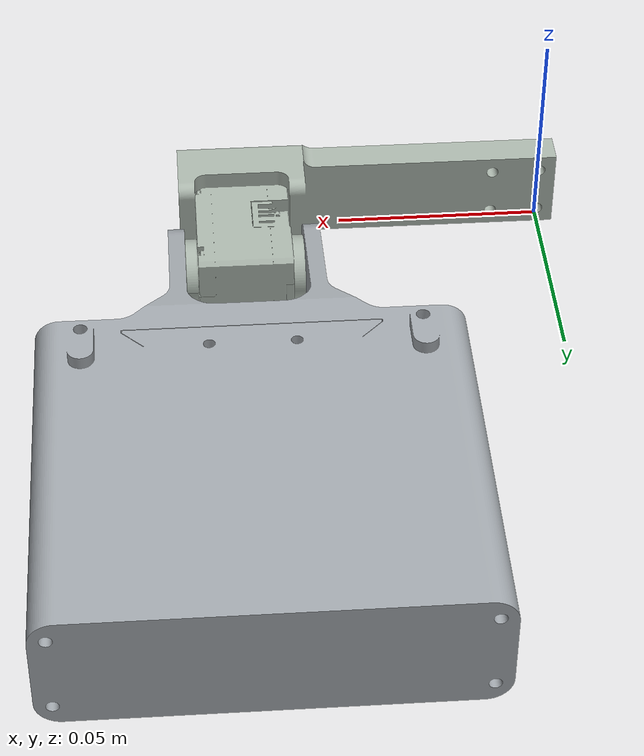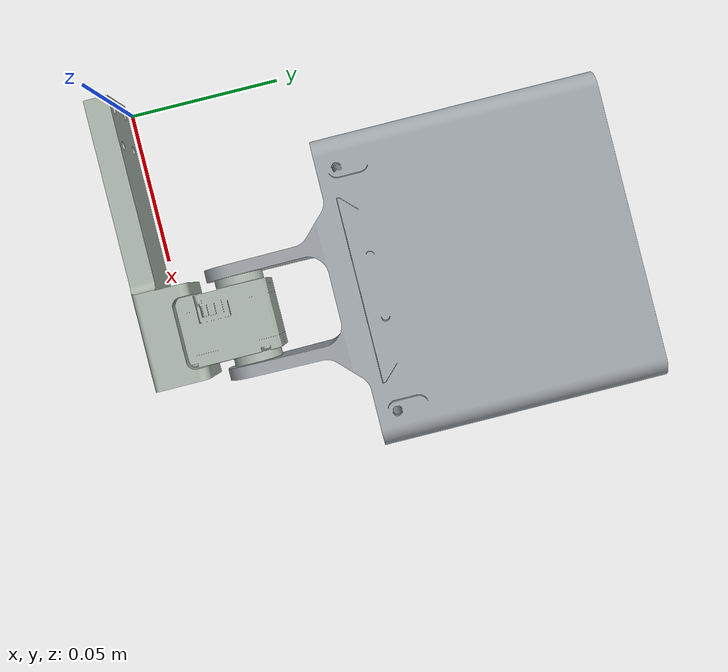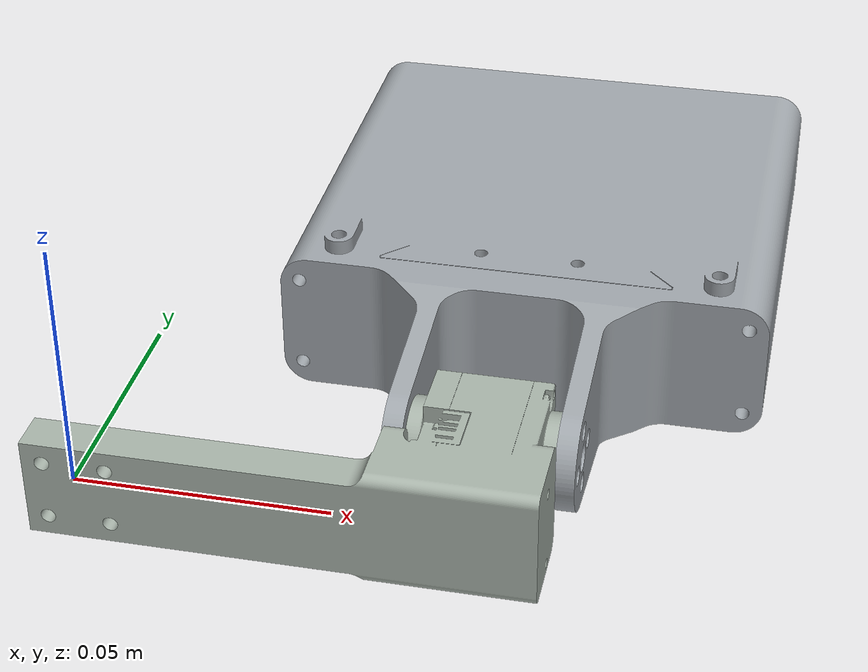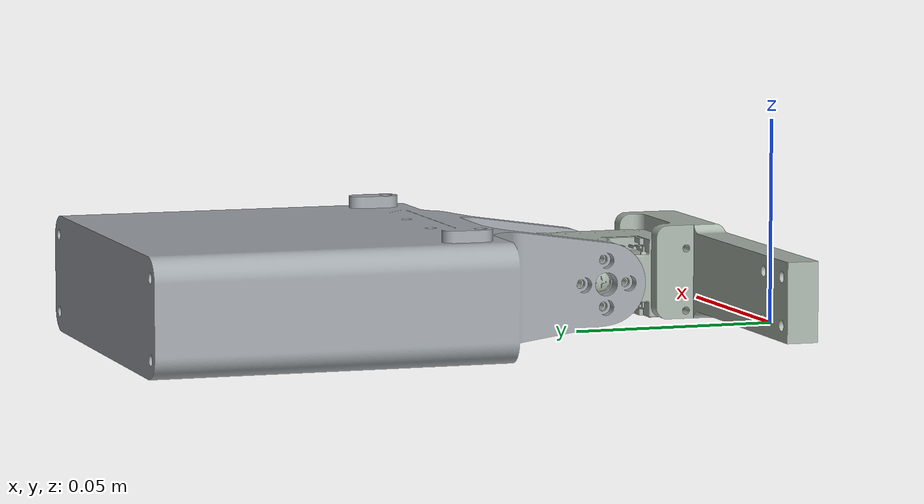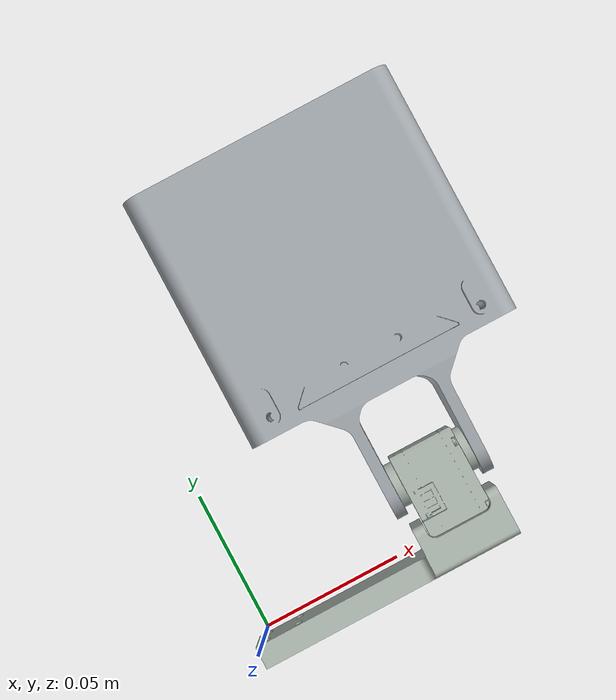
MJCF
<?xml version="1.0" ?>
<mujoco model="sysID_XC330_vis_scene">
  <include file="sysID_XC330_vis.xml"/>
  <statistic center="0 0 -0.05" extent="0.6"/>
  <visual>
    <headlight diffuse="0.6 0.6 0.6" ambient="0.3 0.3 0.3" specular="0 0 0"/>
    <rgba haze="0.15 0.25 0.35 1"/>
    <global azimuth="160" elevation="-20" offwidth="1280" offheight="720"/>
  </visual>
  <worldbody>
    <light pos="0 0 1.5" dir="0 0 -1" directional="true"/>
    <camera name="perspective" pos="0.7 -0.7 0.35" xyaxes="1 1 0 -1 1 3" mode="trackcom"/>
    <camera name="side" pos="0 -1 0.25" xyaxes="1 0 0 0 1 3" mode="trackcom"/>
    <camera name="top" pos="0 0 0.65" xyaxes="0 1 0 -1 0 0" mode="trackcom"/>
    <camera name="front" pos="1 0 0.25" xyaxes="0 1 0 -1 0 3" mode="trackcom"/>
  </worldbody>
</mujoco>

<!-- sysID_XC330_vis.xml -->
<mujoco model="sysID_XC330">
  <compiler angle="radian" autolimits="true"/>
  <asset>
    <mesh name="xc330_visual" file="../assemblies/sysID_XC330/meshes/xc330_visual.stl"/>
    <mesh name="arm_330_visual" file="../assemblies/sysID_XC330/meshes/arm_330_visual.stl"/>
  </asset>
  <worldbody>
    <geom type="mesh" rgba="0.662917 0.7055 0.667299 1" mesh="xc330_visual" class="visual"/>
    <body name="arm_330" pos="0.0894 0.0219499 0.0034194" quat="0.5 0.5 0.5 0.5">
      <inertial pos="0.0777716 1.36379e-05 -0.0145" quat="0.707306 0 0 0.706908" mass="0.2555" diaginertia="0.000410316 0.000243223 0.000221442"/>
      <joint name="joint_0" pos="0 0 0" axis="0 0 1" range="-1.5708 1.5708" damping="0.134" armature="0.0035" frictionloss="0.014"/>
      <geom type="mesh" rgba="0.630593 0.65299 0.674189 1" mesh="arm_330_visual" class="visual"/>
    </body>
  </worldbody>
  <option>
    <flag eulerdamp="disable"/>
  </option>
  <equality/>
  <contact/>
  <actuator>
    <position name="joint_0" joint="joint_0" kp="11.71875" ctrlrange="-1.5708 1.5708" class="XC330"/>
  </actuator>
  <default>
    <default class="visual">
      <geom type="mesh" contype="0" conaffinity="0" group="2"/>
    </default>
    <default class="collision">
      <geom group="3"/>
    </default>
    <default class="XC330">
      <position forcerange="-1 1"/>
    </default>
  </default>
</mujoco>
